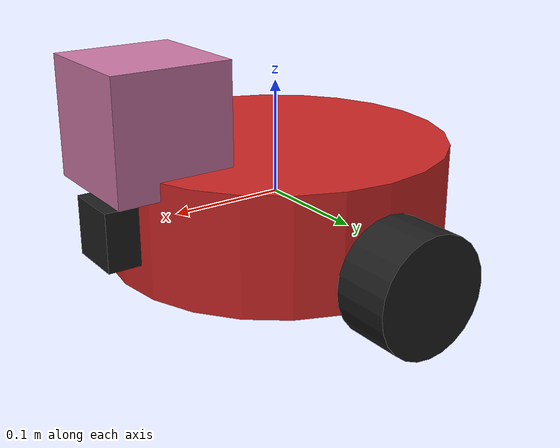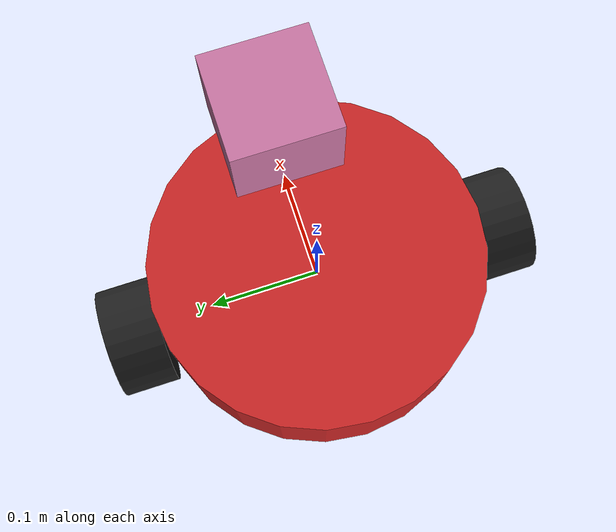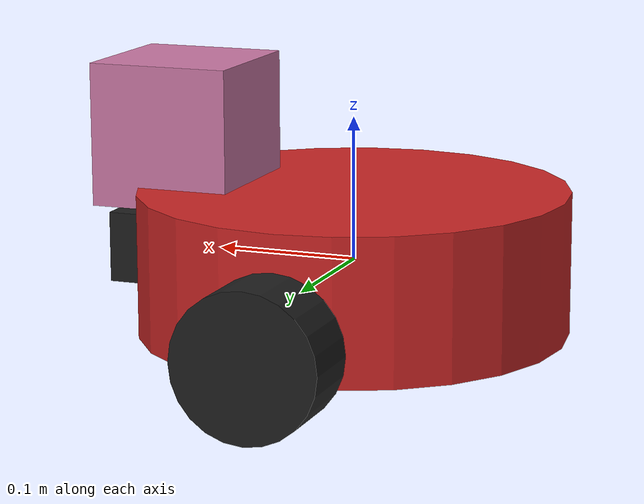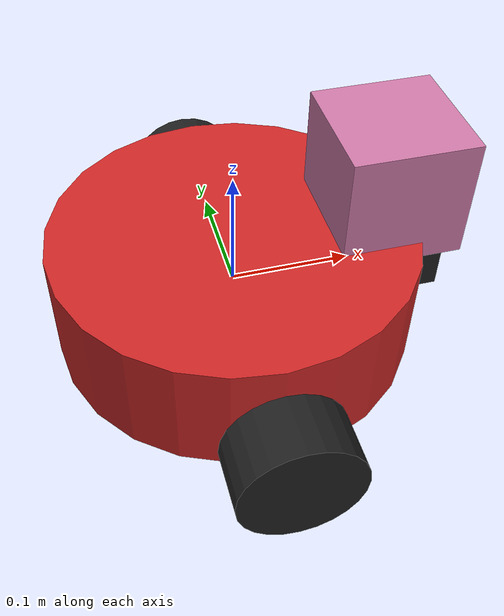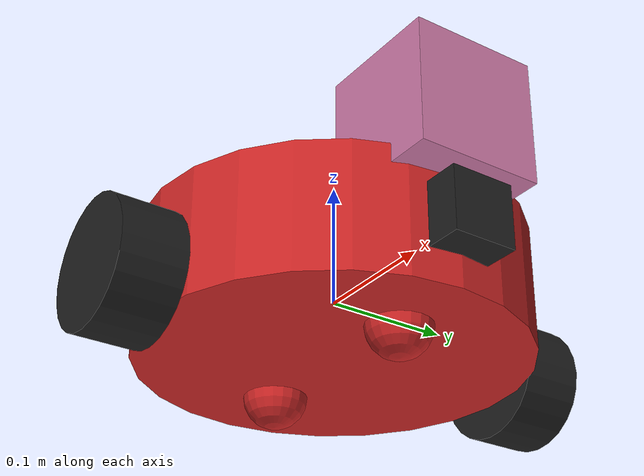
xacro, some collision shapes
<?xml version='1.0'?>

<robot name="my_robot" xmlns:xacro="http://www.ros.org/wiki/xacro">
  <xacro:include filename="$(find my_robot)/urdf/my_robot.gazebo" />
  <link name="robot_footprint"></link>

  <!-- CHASSIS -->
  <joint name="robot_footprint_joint" type="fixed">
    <origin xyz="0 0 0" rpy="0 0 0" />
    <parent link="robot_footprint"/>
    <child link="chassis" />
  </joint>

  <link name='chassis'>
    <pose>0 0 0.075 0 0 0</pose>

    <inertial>
      <mass value="15.0"/>
      <origin xyz="0.0 0 0" rpy=" 0 0 0"/>
      <inertia
          ixx="0.1" ixy="0" ixz="0"
          iyy="0.1" iyz="0"
          izz="0.1"
      />
    </inertial>

    <collision name='chassis_collision'>
      <origin xyz="0 0 0" rpy=" 0 0 0"/>
      <geometry>
        <cylinder radius=".15" length=".1"/>
      </geometry>
    </collision>

    <visual name='chassis_visual'>
      <origin xyz="0 0 0" rpy=" 0 0 0"/>
      <geometry>
        <cylinder radius=".15" length=".1"/>
      </geometry>
    </visual>

    <collision name='back_caster_collision'>
      <origin xyz="-0.08 0 -0.05" rpy=" 0 0 0"/>
      <geometry>
        <sphere radius="0.02499"/>
      </geometry>
    </collision>

    <visual name='back_caster_visual'>
      <origin xyz="-0.08 0 -0.05" rpy=" 0 0 0"/>
      <geometry>
        <sphere radius="0.025"/>
      </geometry>
    </visual>

    <collision name='front_caster_collision'>
      <origin xyz="0.8 0 -0.05" rpy=" 0 0 0"/>
      <geometry>
        <sphere radius="0.02499"/>
      </geometry>
    </collision>

    <visual name='front_caster_visual'>
      <origin xyz="0.08 0 -0.05" rpy=" 0 0 0"/>
      <geometry>
        <sphere radius="0.025"/>
      </geometry>
    </visual>

  </link>

  <gazebo reference="chassis">
      <material>Gazebo/Red</material>
  </gazebo>

  <!-- LEFT WHEEL -->

  <joint type="continuous" name="left_wheel_hinge">
    <origin xyz="0 0.175 -0.025" rpy="0 0 0"/>
    <child link="left_wheel"/>
    <parent link="chassis"/>
    <axis xyz="0 1 0" rpy="0 0 0"/>
    <limit effort="10000" velocity="1000"/>
    <dynamics damping="1.0" friction="1.0"/>
  </joint>

  <link name='left_wheel'>

    <inertial>
      <mass value="1.0"/>
      <origin xyz="0.0 0 0" rpy=" 0 1.5707 1.5707"/>
      <inertia
          ixx="0.1" ixy="0" ixz="0"
          iyy="0.1" iyz="0"
          izz="0.1"
      />
    </inertial>

    <collision name='left_wheel_collision'>
      <origin xyz="0 0 0" rpy=" 0 1.5707 1.5707"/>
      <geometry>
        <cylinder radius="0.05" length="0.05"/>
      </geometry>
    </collision>

    <visual name='left_wheel_visual'>
      <origin xyz="0 0 0" rpy=" 0 1.5707 1.5707"/>
      <geometry>
        <cylinder radius="0.05" length="0.05"/>
      </geometry>
    </visual>

  </link>

  <gazebo reference="left_wheel">
      <material>Gazebo/Black</material>
  </gazebo>

  <!-- RIGHT WHEEL -->

  <joint type="continuous" name="right_wheel_hinge">
    <origin xyz="0 -0.175 -0.025" rpy="0 0 0"/>
    <child link="right_wheel"/>
    <parent link="chassis"/>
    <axis xyz="0 1 0" rpy="0 0 0"/>
    <limit effort="10000" velocity="1000"/>
    <dynamics damping="1.0" friction="1.0"/>
  </joint>

  <link name='right_wheel'>

    <inertial>
      <mass value="1.0"/>
      <origin xyz="0.0 0 0" rpy=" 0 1.5707 1.5707"/>
      <inertia
          ixx="0.1" ixy="0" ixz="0"
          iyy="0.1" iyz="0"
          izz="0.1"
      />
    </inertial>

    <collision name='right_wheel_collision'>
      <origin xyz="0 0 0" rpy=" 0 1.5707 1.5707"/>
      <geometry>
        <cylinder radius="0.05" length="0.05"/>
      </geometry>
    </collision>

    <visual name='right_wheel_visual'>
      <origin xyz="0 0 0" rpy=" 0 1.5707 1.5707"/>
      <geometry>
        <cylinder radius="0.05" length="0.05"/>
      </geometry>
    </visual>

  </link>

  <gazebo reference="right_wheel">
      <material>Gazebo/Black</material>
  </gazebo>

  <!-- CAMERA -->

  <joint type="fixed" name="camera_joint">
    <origin xyz="0.15 0 0" rpy="0 0 0"/>
    <child link="camera"/>
    <parent link="chassis"/>
    <axis xyz="0 1 0" rpy="0 0 0"/>
  </joint>

  <link name='camera'>

    <inertial>
      <mass value="0.1"/>
      <origin xyz="0 0 0" rpy=" 0 0 0"/>
      <inertia
          ixx="1e-6" ixy="0" ixz="0"
          iyy="1e-6" iyz="0"
          izz="1e-6"
      />
      <box_inertia m="0.1" x="0.05" y="0.05" z="0.05"/>
    </inertial>

    <collision name='camera_collision'>
      <origin xyz="0 0 0" rpy=" 0 0 0"/>
      <geometry>
        <box size="0.05 0.05 0.05"/>
      </geometry>
    </collision>

    <visual name='camera_visual'>
      <origin xyz="0 0 0" rpy=" 0 0 0"/>
      <geometry>
        <box size="0.05 0.05 0.05"/>
      </geometry>
    </visual>

  </link>

  <joint name="camera_optical_joint" type="fixed">
    <origin xyz="0 0 0" rpy="-1.5707 0 -1.5707"/>
    <parent link="camera"/>
    <child link="camera_link_optical"/>
  </joint>

  <link name="camera_link_optical">
  </link>

  <gazebo reference="camera">
      <material>Gazebo/Black</material>
  </gazebo>

  <!-- HOKUYO LIDAR -->

  <joint type="fixed" name="hukoyo_joint">
    <origin xyz="0.125 0 0.085" rpy="0 0 0"/>
    <child link="hokuyo"/>
    <parent link="chassis"/>
    <axis xyz="0 1 0" rpy="0 0 0"/>
  </joint>

  <link name='hokuyo'>

    <inertial>
      <mass value="1e-5"/>
      <origin xyz="0 0 0" rpy=" 0 0 0"/>
      <inertia
          ixx="1e-6" ixy="0" ixz="0"
          iyy="1e-6" iyz="0"
          izz="1e-6"
      />
    </inertial>

    <collision name='hokuyo_collision'>
      <origin xyz="0 0 0" rpy=" 0 0 0"/>
      <geometry>
        <box size="0.1 0.1 0.1"/>
      </geometry>
    </collision>

    <visual name='hokuyo_visual'>
      <origin xyz="0 0 0" rpy=" 0 0 0"/>
      <geometry>
        <mesh filename="package://my_robot/meshes/hokuyo.dae"/>

      </geometry>
    </visual>

  </link>

</robot>
